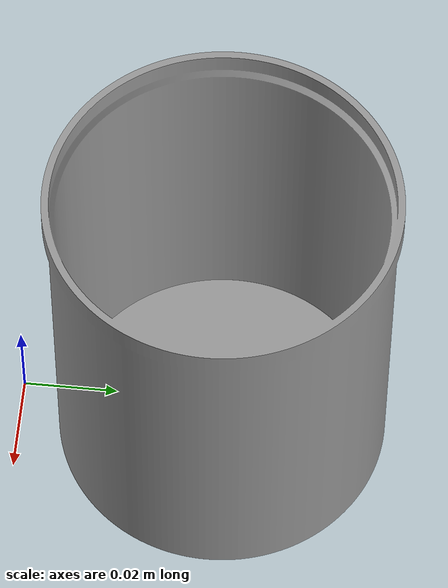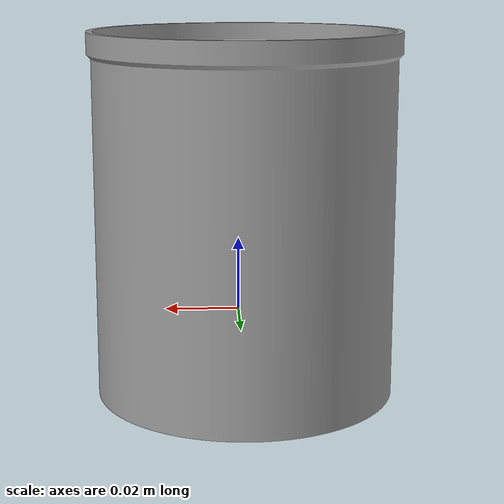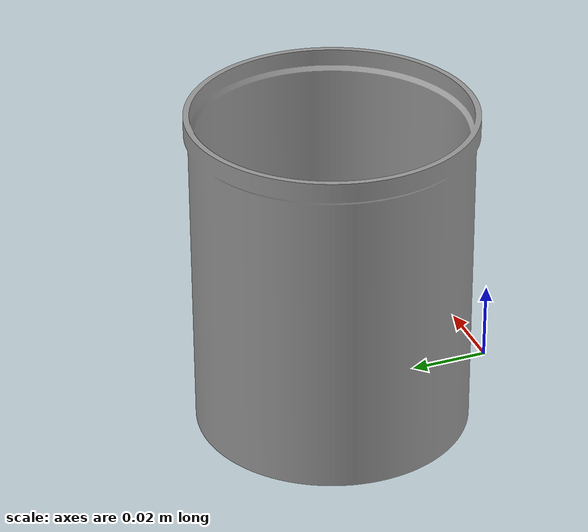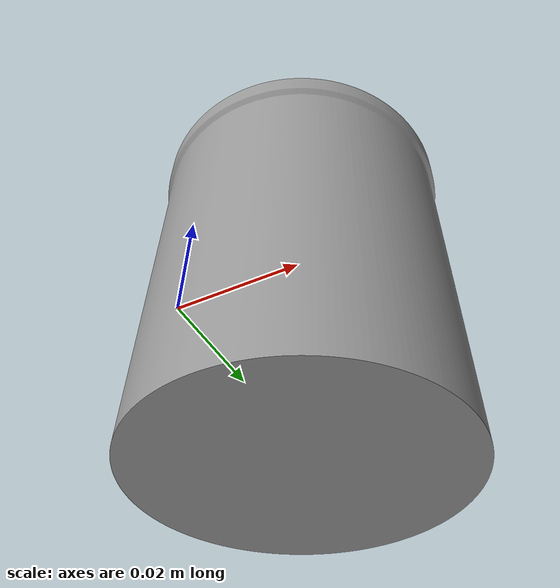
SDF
<?xml version="1.0" ?>
<sdf version="1.5">
  <model name="something">
    <static>false</static>
    <link name="link">
      <collision name="collision">
        <geometry>
          <mesh>
            <uri>model://something/meshes/other.stl</uri>
            <scale>0.001 0.001 0.001</scale>
          </mesh>
        </geometry>
        <surface>
          <friction>
            <ode>
              <mu>100</mu>
              <mu2>50</mu2>
            </ode>
          </friction>
        </surface>
      </collision>
      <visual name="visual">
        <geometry>
          <mesh>
            <uri>model://something/meshes/other.stl</uri>
            <scale>0.001 0.001 0.001</scale>
          </mesh>
        </geometry>
        <material>
          <script>
            <uri>file://media/materials/scripts/gazebo.material</uri>
            <name>Gazebo/Grey</name>
          </script>
        </material>
      </visual>
    </link>
  </model>
</sdf>
